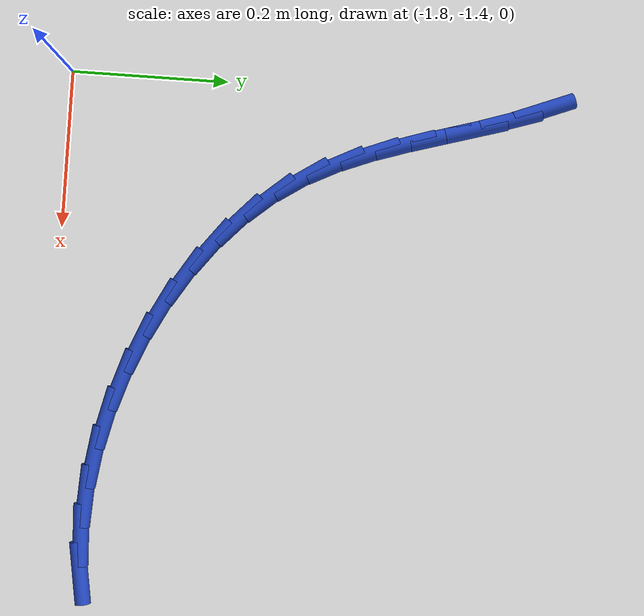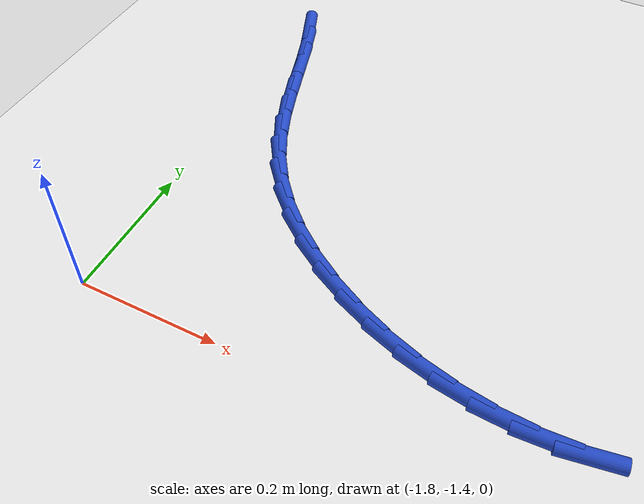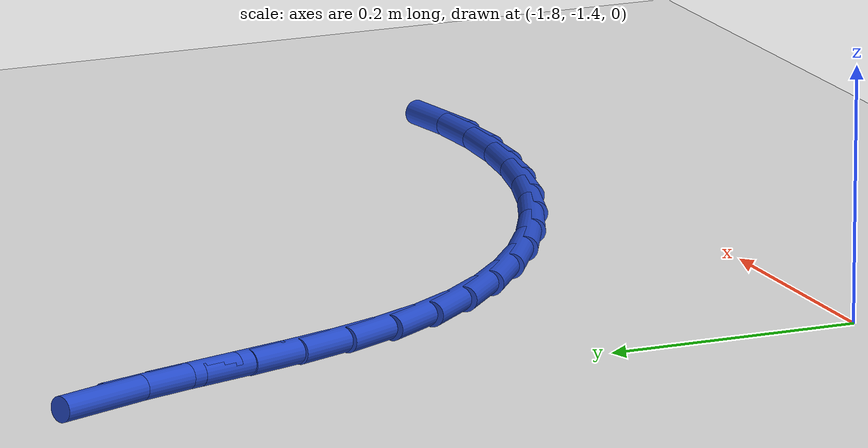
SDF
<sdf version="1.6">
 <world name="default">
  <model name="ground_plane">
   <static>1</static>
   <link name="link">
    <collision name="collision">
     <geometry><plane><normal>0 0 1</normal><size>100 100</size></plane></geometry>
     <surface><friction><ode><mu>100</mu><mu2>50</mu2></ode></friction></surface>
    </collision>
    <visual name="visual">
     <cast_shadows>0</cast_shadows>
     <geometry><plane><normal>0 0 1</normal><size>100 100</size></plane></geometry>
     <material>
      <script><uri>file://media/materials/scripts/gazebo.material</uri><name>Gazebo/WhiteGlow</name></script>
     </material>
    </visual>
   </link>
  </model>
  <model name="line">
   <link name="link_100">
    <pose>-1.7906293084723321 -0.7957941258532089 0.01 0 1.57 -1.1939868980171728</pose>
    <collision name="collision">
     <geometry><cylinder><radius>0.01</radius><length>0.08</length></cylinder></geometry>
    </collision>
    <visual name="visual">
     <material>
      <script><name>Gazebo/Blue</name><uri>file://media/materials/scripts/gazebo.material</uri></script>
     </material>
     <geometry><cylinder><radius>0.01</radius><length>0.08</length></cylinder></geometry>
    </visual>
   </link>
   <link name="link_101">
    <pose>-1.7741680883369284 -0.8373925021205691 0.01 0 1.57 -1.2542530709602575</pose>
    <collision name="collision">
     <geometry><cylinder><radius>0.01</radius><length>0.08</length></cylinder></geometry>
    </collision>
    <visual name="visual">
     <material>
      <script><name>Gazebo/Blue</name><uri>file://media/materials/scripts/gazebo.material</uri></script>
     </material>
     <geometry><cylinder><radius>0.01</radius><length>0.08</length></cylinder></geometry>
    </visual>
   </link>
   <link name="link_102">
    <pose>-1.7600408044897464 -0.8805216849977889 0.01 0 1.57 -1.283057666014761</pose>
    <collision name="collision">
     <geometry><cylinder><radius>0.01</radius><length>0.08</length></cylinder></geometry>
    </collision>
    <visual name="visual">
     <material>
      <script><name>Gazebo/Blue</name><uri>file://media/materials/scripts/gazebo.material</uri></script>
     </material>
     <geometry><cylinder><radius>0.01</radius><length>0.08</length></cylinder></geometry>
    </visual>
   </link>
   <link name="link_103">
    <pose>-1.7470086242493892 -0.9245565017120677 0.01 0 1.57 -1.2817981727240415</pose>
    <collision name="collision">
     <geometry><cylinder><radius>0.01</radius><length>0.08</length></cylinder></geometry>
    </collision>
    <visual name="visual">
     <material>
      <script><name>Gazebo/Blue</name><uri>file://media/materials/scripts/gazebo.material</uri></script>
     </material>
     <geometry><cylinder><radius>0.01</radius><length>0.08</length></cylinder></geometry>
    </visual>
   </link>
   <link name="link_104">
    <pose>-1.7338327149344597 -0.9688717794906038 0.01 0 1.57 -1.2510608752635248</pose>
    <collision name="collision">
     <geometry><cylinder><radius>0.01</radius><length>0.08</length></cylinder></geometry>
    </collision>
    <visual name="visual">
     <material>
      <script><name>Gazebo/Blue</name><uri>file://media/materials/scripts/gazebo.material</uri></script>
     </material>
     <geometry><cylinder><radius>0.01</radius><length>0.08</length></cylinder></geometry>
    </visual>
   </link>
   <link name="link_105">
    <pose>-1.7192742438635615 -1.012842345560596 0.01 0 1.57 -1.1906991345793134</pose>
    <collision name="collision">
     <geometry><cylinder><radius>0.01</radius><length>0.08</length></cylinder></geometry>
    </collision>
    <visual name="visual">
     <material>
      <script><name>Gazebo/Blue</name><uri>file://media/materials/scripts/gazebo.material</uri></script>
     </material>
     <geometry><cylinder><radius>0.01</radius><length>0.08</length></cylinder></geometry>
    </visual>
   </link>
   <link name="link_106">
    <pose>-1.7020943783552969 -1.0558430271492432 0.01 0 1.57 -1.1006533617918133</pose>
    <collision name="collision">
     <geometry><cylinder><radius>0.01</radius><length>0.08</length></cylinder></geometry>
    </collision>
    <visual name="visual">
     <material>
      <script><name>Gazebo/Blue</name><uri>file://media/materials/scripts/gazebo.material</uri></script>
     </material>
     <geometry><cylinder><radius>0.01</radius><length>0.08</length></cylinder></geometry>
    </visual>
   </link>
   <link name="link_107">
    <pose>-1.68105428572827 -1.0972486514837423 0.01 0 1.57 -0.9836174688730298</pose>
    <collision name="collision">
     <geometry><cylinder><radius>0.01</radius><length>0.08</length></cylinder></geometry>
    </collision>
    <visual name="visual">
     <material>
      <script><name>Gazebo/Blue</name><uri>file://media/materials/scripts/gazebo.material</uri></script>
     </material>
     <geometry><cylinder><radius>0.01</radius><length>0.08</length></cylinder></geometry>
    </visual>
   </link>
   <link name="link_108">
    <pose>-1.6549697062301942 -1.1364454400796515 0.01 0 1.57 -0.8622908046018638</pose>
    <collision name="collision">
     <geometry><cylinder><radius>0.01</radius><length>0.08</length></cylinder></geometry>
    </collision>
    <visual name="visual">
     <material>
      <script><name>Gazebo/Blue</name><uri>file://media/materials/scripts/gazebo.material</uri></script>
     </material>
     <geometry><cylinder><radius>0.01</radius><length>0.08</length></cylinder></geometry>
    </visual>
   </link>
   <link name="link_109">
    <pose>-1.6236259806059639 -1.1730220574556345 0.01 0 1.57 -0.7529133415946838</pose>
    <collision name="collision">
     <geometry><cylinder><radius>0.01</radius><length>0.08</length></cylinder></geometry>
    </collision>
    <visual name="visual">
     <material>
      <script><name>Gazebo/Blue</name><uri>file://media/materials/scripts/gazebo.material</uri></script>
     </material>
     <geometry><cylinder><radius>0.01</radius><length>0.08</length></cylinder></geometry>
    </visual>
   </link>
   <link name="link_110">
    <pose>-1.5876417822022695 -1.2067411597433815 0.01 0 1.57 -0.6537586849063143</pose>
    <collision name="collision">
     <geometry><cylinder><radius>0.01</radius><length>0.08</length></cylinder></geometry>
    </collision>
    <visual name="visual">
     <material>
      <script><name>Gazebo/Blue</name><uri>file://media/materials/scripts/gazebo.material</uri></script>
     </material>
     <geometry><cylinder><radius>0.01</radius><length>0.08</length></cylinder></geometry>
    </visual>
   </link>
   <link name="link_111">
    <pose>-1.5476629076018678 -1.2373710661382655 0.01 0 1.57 -0.5623939805745815</pose>
    <collision name="collision">
     <geometry><cylinder><radius>0.01</radius><length>0.08</length></cylinder></geometry>
    </collision>
    <visual name="visual">
     <material>
      <script><name>Gazebo/Blue</name><uri>file://media/materials/scripts/gazebo.material</uri></script>
     </material>
     <geometry><cylinder><radius>0.01</radius><length>0.08</length></cylinder></geometry>
    </visual>
   </link>
   <link name="link_112">
    <pose>-1.5043351533875184 -1.2646800958356592 0.01 0 1.57 -0.4764437578981996</pose>
    <collision name="collision">
     <geometry><cylinder><radius>0.01</radius><length>0.08</length></cylinder></geometry>
    </collision>
    <visual name="visual">
     <material>
      <script><name>Gazebo/Blue</name><uri>file://media/materials/scripts/gazebo.material</uri></script>
     </material>
     <geometry><cylinder><radius>0.01</radius><length>0.08</length></cylinder></geometry>
    </visual>
   </link>
   <link name="link_113">
    <pose>-1.4583043161419782 -1.2884365680309366 0.01 0 1.57 -0.3936479816490075</pose>
    <collision name="collision">
     <geometry><cylinder><radius>0.01</radius><length>0.08</length></cylinder></geometry>
    </collision>
    <visual name="visual">
     <material>
      <script><name>Gazebo/Blue</name><uri>file://media/materials/scripts/gazebo.material</uri></script>
     </material>
     <geometry><cylinder><radius>0.01</radius><length>0.08</length></cylinder></geometry>
    </visual>
   </link>
   <link name="link_114">
    <pose>-1.4102161924480054 -1.3084088019194708 0.01 0 1.57 -0.31183529339466115</pose>
    <collision name="collision">
     <geometry><cylinder><radius>0.01</radius><length>0.08</length></cylinder></geometry>
    </collision>
    <visual name="visual">
     <material>
      <script><name>Gazebo/Blue</name><uri>file://media/materials/scripts/gazebo.material</uri></script>
     </material>
     <geometry><cylinder><radius>0.01</radius><length>0.08</length></cylinder></geometry>
    </visual>
   </link>
   <link name="link_115">
    <pose>-1.3607165788883577 -1.3243651166966353 0.01 0 1.57 -0.22885725910684218</pose>
    <collision name="collision">
     <geometry><cylinder><radius>0.01</radius><length>0.08</length></cylinder></geometry>
    </collision>
    <visual name="visual">
     <material>
      <script><name>Gazebo/Blue</name><uri>file://media/materials/scripts/gazebo.material</uri></script>
     </material>
     <geometry><cylinder><radius>0.01</radius><length>0.08</length></cylinder></geometry>
    </visual>
   </link>
   <link name="link_116">
    <pose>-1.3104512720457917 -1.3360738315578038 0.01 0 1.57 -0.1425106126686789</pose>
    <collision name="collision">
     <geometry><cylinder><radius>0.01</radius><length>0.08</length></cylinder></geometry>
    </collision>
    <visual name="visual">
     <material>
      <script><name>Gazebo/Blue</name><uri>file://media/materials/scripts/gazebo.material</uri></script>
     </material>
     <geometry><cylinder><radius>0.01</radius><length>0.08</length></cylinder></geometry>
    </visual>
   </link>
   <link name="link_117">
    <pose>-1.260066068503068 -1.3433032656983488 0.01 0 1.57 -0.050468695093535236</pose>
    <collision name="collision">
     <geometry><cylinder><radius>0.01</radius><length>0.08</length></cylinder></geometry>
    </collision>
    <visual name="visual">
     <material>
      <script><name>Gazebo/Blue</name><uri>file://media/materials/scripts/gazebo.material</uri></script>
     </material>
     <geometry><cylinder><radius>0.01</radius><length>0.08</length></cylinder></geometry>
    </visual>
   </link>
   <link name="link_118">
    <pose>-1.2102067648429427 -1.3458217383136446 0.01 0 1.57 0.04974919898429367</pose>
    <collision name="collision">
     <geometry><cylinder><radius>0.01</radius><length>0.08</length></cylinder></geometry>
    </collision>
    <visual name="visual">
     <material>
      <script><name>Gazebo/Blue</name><uri>file://media/materials/scripts/gazebo.material</uri></script>
     </material>
     <geometry><cylinder><radius>0.01</radius><length>0.08</length></cylinder></geometry>
    </visual>
   </link>
   <link name="link_119">
    <pose>-1.1615191576481743 -1.343397568599064 0.01 0 1.57 0.1607197863049286</pose>
    <collision name="collision">
     <geometry><cylinder><radius>0.01</radius><length>0.08</length></cylinder></geometry>
    </collision>
    <visual name="visual">
     <material>
      <script><name>Gazebo/Blue</name><uri>file://media/materials/scripts/gazebo.material</uri></script>
     </material>
     <geometry><cylinder><radius>0.01</radius><length>0.08</length></cylinder></geometry>
    </visual>
   </link>
  </model>
 </world>
</sdf>
